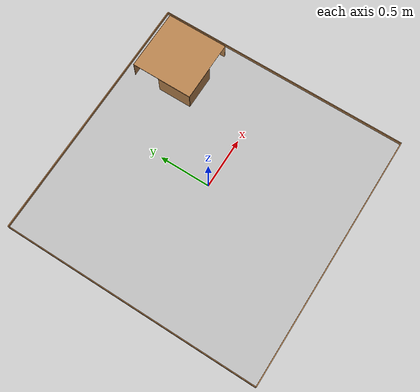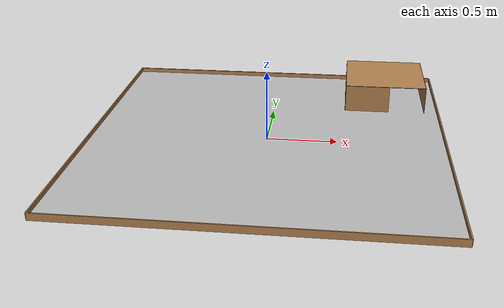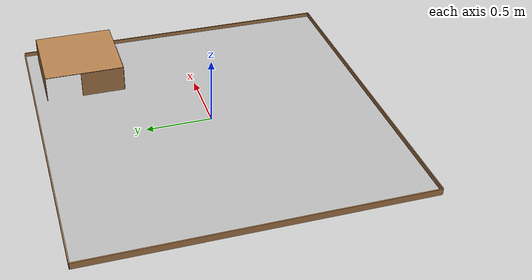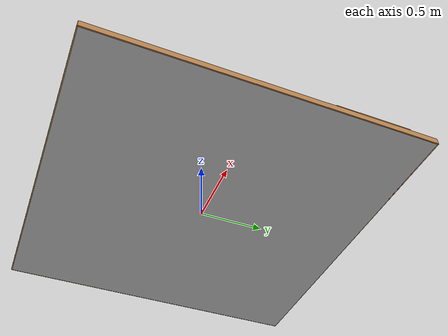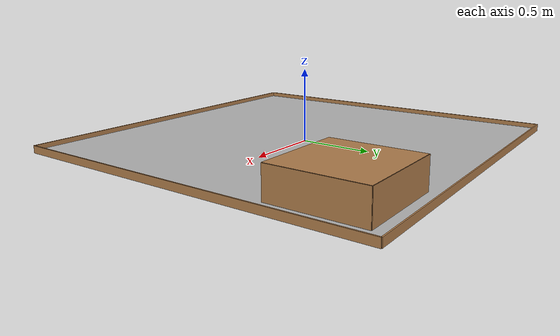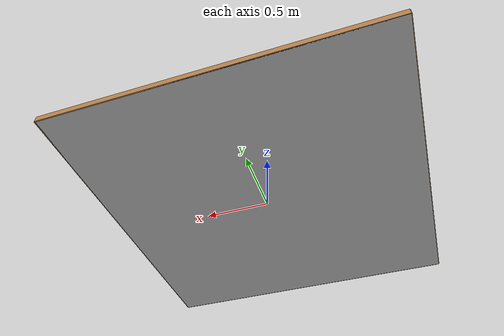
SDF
<?xml version="1.0"?>
<sdf version="1.6">
  <model name="Arena Test">
    <pose> 0 0 0.009 0 0 0 </pose>
    <static>true</static>
    <link name="arena">
      <!-- Sol de l'arène -->
      <collision name="arena_collision">
        <geometry>
          <box>
            <size>2.5 2.5 0.018</size>
          </box>
        </geometry>
      </collision>

      <visual name="arena_visual">
        <geometry>
          <box>
            <size>2.5 2.5 0.018</size>
          </box>
        </geometry>
	<material>
	  <script>
		<uri>model://arena/materials/scripts/</uri>
		<uri>model://arena/materials/textures/</uri>
	  	<name>TextureArene</name>
	  </script>
	</material>
      </visual>

      <!-- Tunnel top -->
      <collision name="tunnel_top_collision">
	<pose>0.85 0.85 0.209 0 0 0</pose>
        <geometry>
          <box>
            <size>0.6 0.6 0.003</size>
          </box>
        </geometry>
      </collision>

      <visual name="tunnel_top_visual">
	<pose>0.85 0.85 0.209 0 0 0</pose>
        <geometry>
          <box>
            <size>0.6 0.6 0.003</size>
          </box>
        </geometry>
	<material>
	  <script>
		<name>Gazebo/Wood</name> <!-- Texture bois pour la planche -->
	  </script>
	</material>
      </visual>

      <!-- Tunnel side -->
      <collision name="tunnel_side_collision1">
	<pose>0.85 1.1515 0.109 0 0 0</pose>
        <geometry>
          <box>
            <size>0.6 0.003 0.2</size>
          </box>
        </geometry>
      </collision>

      <visual name="tunnel_side_visual1">
	<pose>0.85 1.1515 0.109 0 0 0</pose>
        <geometry>
          <box>
            <size>0.6 0.003 0.2</size>
          </box>
        </geometry>
	<material>
	  <script>
		<name>Gazebo/Wood</name> <!-- Texture bois pour la planche -->
	  </script>
	</material>
      </visual>

      <!-- Tunnel side -->
      <collision name="tunnel_side_collision2">
	<pose>1.1515 0.85 0.109 0 0 0</pose>
        <geometry>
          <box>
            <size>0.003 0.6 0.2</size>
          </box>
        </geometry>
      </collision>

      <visual name="tunnel_side_visual2">
	<pose>1.1515 0.85 0.109 0 0 0</pose>
        <geometry>
          <box>
            <size>0.003 0.6 0.2</size>
          </box>
        </geometry>
	<material>
	  <script>
		<name>Gazebo/Wood</name> <!-- Texture bois pour la planche -->
	  </script>
	</material>
      </visual>

      <!-- Tunnel side -->
      <collision name="tunnel_side_collision3">
	<pose>0.715 0.5485 0.109 0 0 0</pose>
        <geometry>
          <box>
            <size>0.33 0.003 0.2</size>
          </box>
        </geometry>
      </collision>

      <visual name="tunnel_side_visual3">
	<pose>0.715 0.5485 0.109 0 0 0</pose>
        <geometry>
          <box>
            <size>0.33 0.003 0.2</size>
          </box>
        </geometry>
	<material>
	  <script>
		<name>Gazebo/Wood</name> <!-- Texture bois pour la planche -->
	  </script>
	</material>
      </visual>

      <!-- Tunnel side -->
      <collision name="tunnel_side_collision4">
	<pose>0.5485 0.715 0.109 0 0 0</pose>
        <geometry>
          <box>
            <size>0.003 0.33 0.2</size>
          </box>
        </geometry>
      </collision>
      <visual name="tunnel_side_visual4">
	<pose>0.5485 0.715 0.109 0 0 0</pose>
        <geometry>
          <box>
            <size>0.003 0.33 0.2</size>
          </box>
        </geometry>
	<material>
	  <script>
		<name>Gazebo/Wood</name> <!-- Texture bois pour la planche -->
	  </script>
	</material>
      </visual>

      <!-- Bordure de l'arène -->
      <collision name="border_collision1">
	<pose>-1.25 0 0.016 0 0 0</pose>
        <geometry>
          <box>
            <size>0.008 2.5 0.05</size>
          </box>
        </geometry>
      </collision>

      <visual name="border_visual1">
	<pose>-1.25 0 0.016 0 0 0</pose>
        <geometry>
          <box>
            <size>0.008 2.5 0.05</size>
          </box>
        </geometry>
	<material>
	  <script>
		<name>Gazebo/Wood</name> <!-- Texture bois pour la planche -->
	  </script>
	</material>
      </visual>

      <!-- Bordure de l'arène -->
      <collision name="border_collision2">
	<pose>1.25 0 0.016 0 0 0</pose>
        <geometry>
          <box>
            <size>0.008 2.5 0.05</size>
          </box>
        </geometry>
      </collision>

      <visual name="border_visual2">
	<pose>1.25 0 0.016 0 0 0</pose>
        <geometry>
          <box>
            <size>0.008 2.5 0.05</size>
          </box>
        </geometry>
	<material>
	  <script>
		<name>Gazebo/Wood</name> <!-- Texture bois pour la planche -->
	  </script>
	</material>
      </visual>

      <!-- Bordure de l'arène -->
      <collision name="border_collision3">
	<pose>0 -1.25 0.016 0 0 0</pose>
        <geometry>
          <box>
            <size>2.5 0.008 0.05</size>
          </box>
        </geometry>
      </collision>

      <visual name="border_visual3">
	<pose>0 -1.25 0.016 0 0 0</pose>
        <geometry>
          <box>
            <size>2.5 0.008 0.05</size>
          </box>
        </geometry>
	<material>
	  <script>
		<name>Gazebo/Wood</name> <!-- Texture bois pour la planche -->
	  </script>
	</material>
      </visual>

      <!-- Bordure de l'arène -->
      <collision name="border_collision4">
	<pose>0 1.25 0.016 0 0 0</pose>
        <geometry>
          <box>
            <size>2.5 0.008 0.05</size>
          </box>
        </geometry>
      </collision>

      <visual name="border_visual4">
	<pose>0 1.25 0.016 0 0 0</pose>
        <geometry>
          <box>
            <size>2.5 0.008 0.05</size>
          </box>
        </geometry>
	<material>
	  <script>
		<name>Gazebo/Wood</name> <!-- Texture bois pour la planche -->
	  </script>
	</material>
      </visual>
    </link>

  </model>
</sdf>
